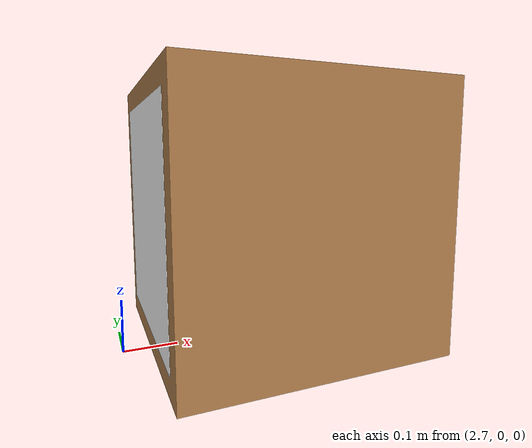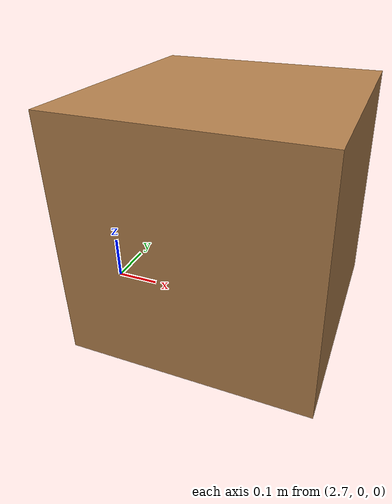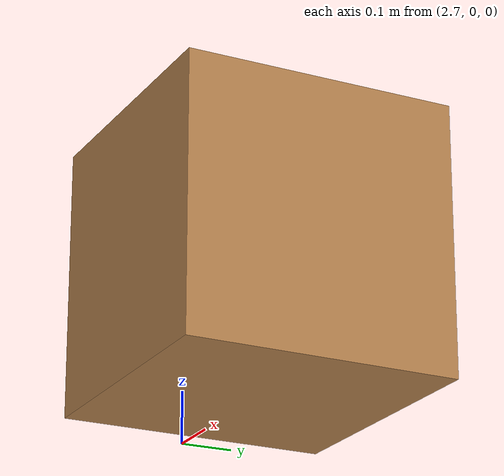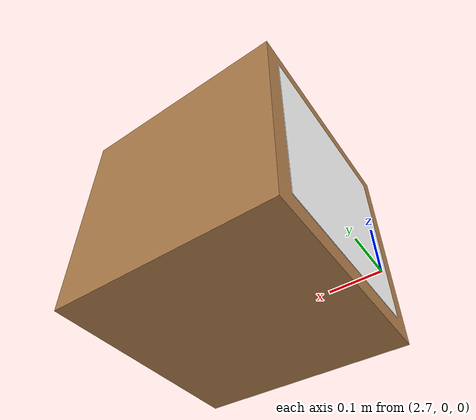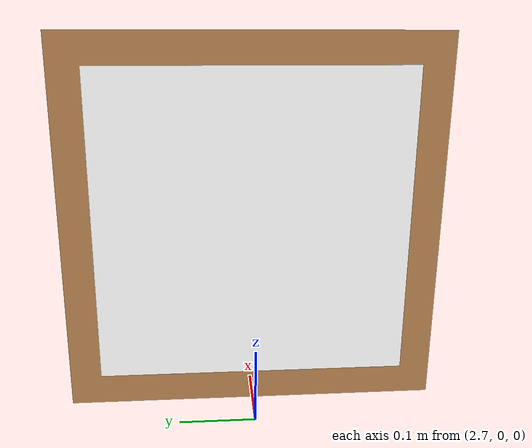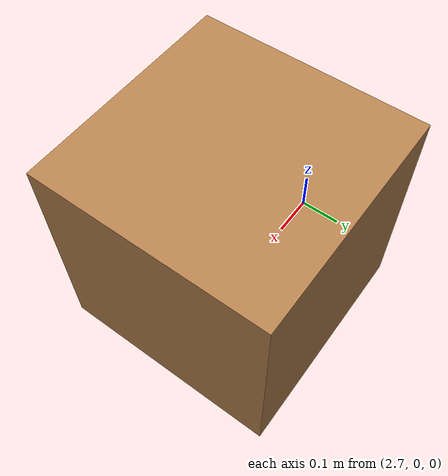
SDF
<?xml version="1.0"?>
<sdf version="1.8">
  <model name="apriltag_box">
    <pose>3 0 0.25 0 0 3.14159</pose>
    <static>true</static>
    <link name="box_link">
      <collision name="collision">
        <geometry>
          <box>
            <size>0.5 0.5 0.5</size>
          </box>
        </geometry>
      </collision>
      <visual name="visual">
        <geometry>
          <box>
            <size>0.5 0.5 0.5</size>
          </box>
        </geometry>
        <material>
          <ambient>0.7 0.5 0.3 1</ambient>
          <diffuse>0.7 0.5 0.3 1</diffuse>
        </material>
      </visual>

      <!-- AprilTag Plane -->
      <visual name="apriltag_visual">
        <pose>0.251 0 0 0 0 0</pose>
        <geometry>
          <box>
            <size>0.001 0.4171875 0.4171875</size>
          </box>
        </geometry>
        <material>
          <ambient>1.0 1.0 1.0 1.0</ambient>
          <diffuse>1.0 1.0 1.0 1.0</diffuse>
          <specular>0.1 0.1 0.1 1.0</specular>
          <pbr>
            <metal>
              <albedo_map>model://apriltag_box/materials/textures/tag25_09_00012_scaled.png</albedo_map>
              <roughness>0.9</roughness>
              <metalness>0.1</metalness>
            </metal>
          </pbr>
        </material>
      </visual>
    </link>
  </model>
</sdf>
